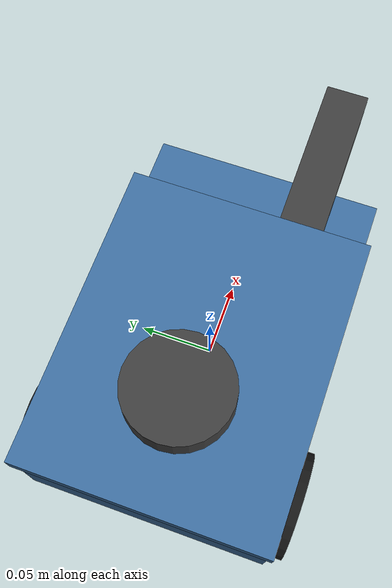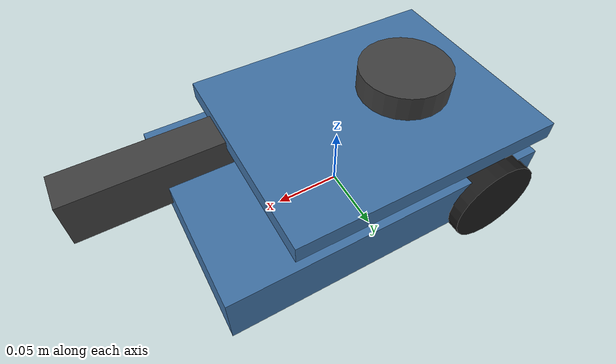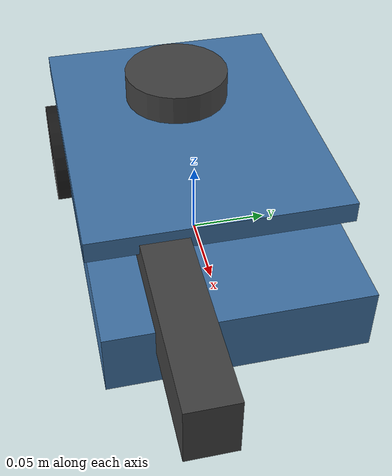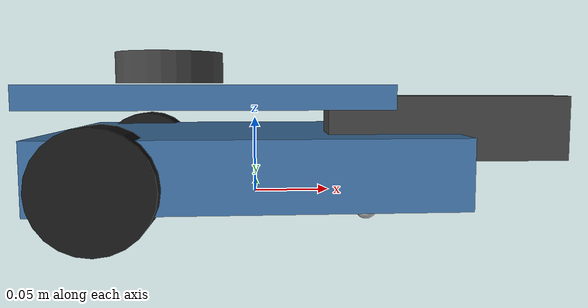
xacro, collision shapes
<?xml version="1.0"?>
<robot xmlns:xacro="http://www.ros.org/wiki/xacro" name="lidarino">

    <!-- ARGOMENTI E PROPRIETA' -->
    <xacro:property name="use_lidar_control" value="false" />
    <xacro:property name="mesh_url" value="package://lidarino_description/urdf/meshes/" />
    <xacro:arg name="use_sim" default="true" />
    <xacro:arg name="sim" default="isaac" />

    <!-- 1. COLORI E MATERIALI -->
    <xacro:include filename="materials.xacro" />

    <!-- 2. CORPO CENTRALE E RUOTE (Versione S2) -->
    <xacro:include filename="lidarino_core_s2.xacro" />

    <!-- 3. SENSORI (Manteniamo i link e i joint fisici) -->
    <xacro:include filename="rplidars2.xacro" />
    <xacro:include filename="astra_camera.xacro" />
    <xacro:include filename="imu.xacro" />

    <xacro:astra_camera parent="base_link" xyz="0.120 0.0 0.025" rpy="1.570796 -1.570796 0" />
    <xacro:rplidars2 parent="base_link" xyz="-0.056 0.0 0.053" rpy="0 0 0" />
    <xacro:imu_sensor parent="base_link" xyz="-0.092 0.0 0.02" rpy="0 0 0" />

</robot>

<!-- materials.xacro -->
<robot xmlns:xacro="http://www.ros.org/wiki/xacro">

    <material name="black">
        <color rgba="0.1 0.1 0.1 1.0"/>
    </material>

    <material name="dark_grey">
        <color rgba="0.25 0.25 0.25 1.0"/>
    </material>

    <material name="matte_orange">
        <color rgba="0.85 0.45 0.15 1.0"/>
    </material>

    <material name="muted_red">
        <color rgba="0.75 0.22 0.17 1.0"/>
    </material>

    <material name="steel_blue">
        <color rgba="0.25 0.45 0.65 1.0"/>
    </material>

    <material name="silver">
        <color rgba="0.75 0.75 0.75 1.0"/>
    </material>

</robot>

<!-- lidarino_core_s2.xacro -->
<robot xmlns:xacro="http://www.ros.org/wiki/xacro" name="Lidarino">

    <link name="base_link">
        <inertial>
            <origin xyz="-0.0062724127968771535 1.3799035175597654e-08 0.013070827636125267" rpy="0.0 0.0 0.0" />
            <mass value="0.4239314641509377" />
            <inertia ixx="0.0010482842137546186" iyy="0.0024338106744802982" izz="0.003184067568059869" ixy="-9.417101996162051e-05" iyz="-2.234993490616969e-06" ixz="0.0001129151524043299" />
        </inertial>
        <visual name="base_link_visual">
            <origin xyz="0.0 0.0 0.0" rpy="0.0 0.0 0.0" />
            <geometry>
                <mesh filename="${mesh_url}base_link_s2.stl" scale="0.001 0.001 0.001" />
            </geometry>
            <material name="steel_blue" />
        </visual>
        <collision name="base_link_collision">
            <origin xyz="0.0 0.0 0.021" rpy="0.0 0.0 0.0" />
            <geometry>
                <box size="0.25 0.16 0.042" />
            </geometry>
        </collision>
    </link>

    <link name="body_lid">
        <inertial>
            <origin xyz="-0.012951394456098867 -3.147938388524642e-07 0.06881041966340294" rpy="0.0 0.0 0.0" />
            <mass value="0.05261379951215123" />
            <inertia ixx="0.0001489352862801382" iyy="0.000229958819591738" izz="0.00037746798651689653" ixy="3.80132469862603e-10" iyz="3.2124298873716476e-11" ixz="-6.825968075725163e-07" />
        </inertial>
        <visual name="body_lid_visual">
            <origin xyz="0.0 0.0 -0.07" rpy="0.0 0.0 0.0" />
            <geometry>
                <mesh filename="${mesh_url}bodyLid.stl" scale="0.001 0.001 0.001" />
            </geometry>
            <material name="steel_blue" />
        </visual>
        <collision name="body_lid_collision">
            <origin xyz="-0.024 0.0 -0.005" rpy="0.0 0.0 0.0" />
            <geometry>
                <box size="0.206 0.164 0.014" />
            </geometry>
        </collision>
    </link>

    <link name="caster">
        <inertial>
            <origin xyz="0.0 0.0 0.0" rpy="0.0 0.0 0.0" />
            <mass value="0.01" />
            <inertia ixx="1e-4" iyy="1e-4" izz="1e-4" ixy="0" iyz="0" ixz="0" />
        </inertial>
        <visual name="caster_visual">
            <origin xyz="0.0 0.0 0.0" rpy="0.0 0.0 0.0" />
            <geometry>
                <sphere radius="0.008" />
            </geometry>
            <material name="silver" />
        </visual>
        <collision name="caster_collision">
            <origin xyz="0.0 0.0 0.0" rpy="0.0 0.0 0.0" />
            <geometry>
                <sphere radius="0.008" />
            </geometry>
        </collision>
    </link>

    <link name="wheel_R">
        <inertial>
            <origin xyz="3.8589283501977436e-08 3.3503422258718277e-13 -0.017044397508191807" rpy="0.0 -0.0 0.0" />
            <mass value="0.0493089812577897" />
            <inertia ixx="2.1725366580018456e-05" iyy="2.172573834724608e-05" izz="3.791921679166611e-05" ixy="5.925842498991085e-17" iyz="1.1233689759665433e-16" ixz="1.2860682814920879e-11" />
        </inertial>
        <visual name="wheel_R_visual">
            <origin xyz="1.1368683772161603e-15 1.3322676295501878e-17 0.0" rpy="-4.72621546065603e-16 -1.1102230246251568e-16 -2.7755575615628926e-17" />
            <geometry>
                <mesh filename="${mesh_url}wheel_R.stl" scale="0.001 0.001 0.001" />
            </geometry>
            <material name="black" />
        </visual>
        <collision name="wheel_R_collision">
            <origin xyz="0 0 -0.017" rpy="0 0 0" />
            <geometry>
                <cylinder radius="0.035" length="0.025" />
            </geometry>
        </collision>
    </link>

    <link name="wheel_L">
        <inertial>
            <origin xyz="3.8589283501977436e-08 3.3503422258718277e-13 -0.017044397508191828" rpy="0.0 -0.0 0.0" />
            <mass value="0.0493089812577897" />
            <inertia ixx="2.17253665800184e-05" iyy="2.1725738347246244e-05" izz="3.7919216791666135e-05" ixy="5.927197751706692e-17" iyz="1.1234367386023236e-16" ixz="1.2860682842025933e-11" />
        </inertial>
        <visual name="wheel_L_visual">
            <origin xyz="1.1368683772161603e-15 1.1102230246251566e-17 0.0" rpy="-1.4649353258190343e-16 -1.2470396389907355e-32 -5.551115123125783e-17" />
            <geometry>
                <mesh filename="${mesh_url}wheel_L.stl" scale="0.001 0.001 0.001" />
            </geometry>
            <material name="black" />
        </visual>
        <collision name="wheel_L_collision">
            <origin xyz="0 0 -0.017" rpy="0 0 0" />
            <geometry>
                <cylinder radius="0.035" length="0.025" />
            </geometry>
        </collision>
    </link>

    <joint name="L_wheel_Revolute" type="continuous">
        <origin xyz="-0.085 0.06 0.015" rpy="1.5707963267948966 -0.0 0.0" />
        <parent link="base_link" />
        <child link="wheel_L" />
        <axis xyz="0.0 0.0 -1.0" />
        <limit effort="1000.0" velocity="200.0" />
        <dynamics damping="10000000.0" friction="0.1" />
    </joint>

    <joint name="R_wheel_Revolute" type="continuous">
        <origin xyz="-0.085 -0.06 0.015" rpy="-1.5707963267948966 -0.0 0.0" />
        <parent link="base_link" />
        <child link="wheel_R" />
        <axis xyz="0.0 0.0 1.0" />
        <limit effort="1000.0" velocity="200.0" />
        <dynamics damping="10000000.0" friction="0.1" />
    </joint>

    <joint name="caster_fixed" type="fixed">
        <origin xyz="0.077 0.0 -0.013" rpy="0.0 0.0 0.0" />
        <parent link="base_link" />
        <child link="caster" />
    </joint>

    <joint name="body_lid_fixed" type="fixed">
        <origin xyz="0.0 0.0 0.07" rpy="0.0 0.0 0.0" />
        <parent link="base_link" />
        <child link="body_lid" />
    </joint>

</robot>

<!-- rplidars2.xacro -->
<robot xmlns:xacro="http://www.ros.org/wiki/xacro">

    <xacro:arg name="sim" default="gazebo" />
    <xacro:macro name="rplidars2" params="parent xyz rpy">

        <link name="rplidars2_link">
            <inertial>
                <origin xyz="-4.876953214253547e-05 6.129273590973731e-06 0.015121950727028356" rpy="0.0 0.0 0.0" />
                <mass value="0.2610121235316497" />
                <inertia ixx="0.00018781372994948866" iyy="0.0001855239755116742" izz="0.0002891065425456664" ixy="1.2883857858081062e-08" iyz="-2.488761129977374e-09" ixz="4.40529556879255e-07" />
            </inertial>
            <visual name="lidar_visual">
                <origin xyz="0.0 0.0 0.0" rpy="0.0 0.0 0.0" />
                <geometry>
                    <mesh filename="${mesh_url}RPLIDARS2.stl" scale="0.001 0.001 0.001" />
                </geometry>
                <material name="dark_grey" />
            </visual>
            <collision name="lidar_collision">
                <origin xyz="0.0 0.0 0.03" rpy="0.0 0.0 0.0" />
                <geometry>
                    <cylinder radius="0.035" length="0.02" />
                </geometry>
            </collision>
        </link>

        <joint name="rplidars2_joint" type="fixed">
            <parent link="${parent}" />
            <child link="rplidars2_link" />
            <origin xyz="${xyz}" rpy="${rpy}" />
        </joint>

        <link name="rplidars2_laser_link" />
        <joint name="rplidars2_laser_joint" type="fixed">
            <parent link="rplidars2_link" />
            <child link="rplidars2_laser_link" />
            <origin xyz="0.0 0.0 0.03" rpy="0.0 0.0 0.0" />
        </joint>

        <xacro:if value="${'$(arg sim)' == 'gazebo'}">
            <gazebo reference="rplidars2_laser_link">
                <sensor name="rplidar_s2" type="gpu_lidar">
                    <topic>/scan</topic>
                    <always_on>true</always_on>
                    <visualize>false</visualize> <update_rate>10.0</update_rate>
                    <gz_frame_id>rplidars2_laser_link</gz_frame_id>
                    <ray>
                        <scan>
                            <horizontal>
                                <samples>1000</samples>
                                <resolution>1.0</resolution>
                                <min_angle>-3.14159</min_angle>
                                <max_angle>3.14159</max_angle>
                            </horizontal>
                        </scan>
                        <range>
                            <min>0.08</min>
                            <max>30.0</max>
                            <resolution>0.013</resolution>
                        </range>
                        <noise>
                            <type>gaussian</type>
                            <mean>0.0</mean>
                            <stddev>0.01</stddev>
                        </noise>
                    </ray>
                </sensor>
            </gazebo>
        </xacro:if>
    </xacro:macro>
</robot>

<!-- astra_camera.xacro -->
<robot xmlns:xacro="http://www.ros.org/wiki/xacro">

    <xacro:arg name="sim" default="gazebo" />
    <xacro:macro name="astra_camera" params="parent xyz rpy">

        <link name="astra_link">
            <inertial>
                <origin xyz="0.021745856967737336 3.8230579211581216e-05 0.029303333814809707" rpy="0.0 0.0 0.0" />
                <mass value="0.23334756462839484" />
                <inertia ixx="0.00045538823905664865" iyy="7.785663760045297e-05" izz="0.00045460807011731756" ixy="1.841447020567419e-07" iyz="-4.2054876695014596e-08" ixz="9.205395041665818e-06" />
            </inertial>
            <visual name="astracamera_visual">
                <origin xyz="0.0 0.0 0.0" rpy="0.0 0.0 0.0" />
                <geometry>
                    <mesh filename="${mesh_url}astracamera.stl" scale="0.001 0.001 0.001" />
                </geometry>
                <material name="dark_grey" />
            </visual>
            <collision name="astracamera_collision">
                <origin xyz="0.02 0.0 0.035" rpy="0.0 0.0 0.0" />
                <geometry>
                    <box size="0.04 0.15 0.03" />
                </geometry>
            </collision>
        </link>

        <joint name="astra_joint" type="fixed">
            <parent link="${parent}" />
            <child link="astra_link" />
            <origin xyz="${xyz}" rpy="${rpy}" />
        </joint>

        <link name="astra_optical_frame" />
        <joint name="astra_optical_joint" type="fixed">
            <parent link="astra_link" />
            <child link="astra_optical_frame" />
            <origin xyz="0 0 0.032" rpy="${rpy}" />
        </joint>

        <xacro:if value="${'$(arg sim)' == 'gazebo'}">
            <gazebo reference="astra_optical_frame">
                <sensor type="rgbd_camera" name="astra_pro">
                    <topic>/astra/camera</topic>
                    <always_on>true</always_on>
                    <update_rate>5.0</update_rate>
                    <camera>
                        <horizontal_fov>1.047</horizontal_fov>
                        <image>
                            <width>640</width>
                            <height>480</height>
                            <format>R8G8B8</format>
                        </image>
                        <clip>
                            <near>0.1</near>
                            <far>8.0</far>
                        </clip>
                    </camera>
                    <gz_frame_id>astra_optical_frame</gz_frame_id>
                </sensor>
            </gazebo>
        </xacro:if>
    </xacro:macro>
</robot>

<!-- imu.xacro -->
<robot xmlns:xacro="http://www.ros.org/wiki/xacro">

    <!--
        IMU per sensor fusion (es. robot_localization ekf_node).
        Topic pubblicato: /imu (sensor_msgs/msg/Imu)
        Frame: imu_link (X=avanti, Y=sinistra, Z=su)
    -->
    <xacro:arg name="sim" default="gazebo" />
    <xacro:macro name="imu_sensor" params="parent xyz rpy">

        <link name="imu_link">
            <inertial>
                <!-- IMU reale tipica: pochi grammi, trascurabile dal punto di vista
                     inerziale ma serve comunque un inertial valido per KDL/ros2_control -->
                <origin xyz="0 0 0" rpy="0 0 0" />
                <mass value="0.01" />
                <inertia ixx="1e-4" iyy="1e-4" izz="1e-4" ixy="0.0" iyz="0.0" ixz="0.0" />
            </inertial>
            <visual name="imu_visual">
                <origin xyz="0 0 0" rpy="0 0 0" />
                <geometry>
                    <box size="0.005 0.005 0.005" />
                </geometry>
                <material name="dark_grey" />
            </visual>
            <collision name="imu_collision">
                <origin xyz="0 0 0" rpy="0 0 0" />
                <geometry>
                    <box size="0.005 0.005 0.005" />
                </geometry>
            </collision>
        </link>

        <joint name="imu_joint" type="fixed">
            <parent link="${parent}" />
            <child link="imu_link" />
            <origin xyz="${xyz}" rpy="${rpy}" />
        </joint>

        <xacro:if value="${'$(arg sim)' == 'gazebo'}">
            <gazebo reference="imu_link">
                <sensor type="imu" name="imu_sensor">
                    <topic>/imu</topic>
                    <always_on>true</always_on>
                    <update_rate>100.0</update_rate>
                    <gz_frame_id>imu_link</gz_frame_id>
                    <imu>
                        <angular_velocity>
                            <x>
                                <noise type="gaussian">
                                    <mean>0.0</mean>
                                    <stddev>0.0003</stddev>
                                    <bias_mean>0.0000075</bias_mean>
                                    <bias_stddev>0.0000008</bias_stddev>
                                </noise>
                            </x>
                            <y>
                                <noise type="gaussian">
                                    <mean>0.0</mean>
                                    <stddev>0.0003</stddev>
                                    <bias_mean>0.0000075</bias_mean>
                                    <bias_stddev>0.0000008</bias_stddev>
                                </noise>
                            </y>
                            <z>
                                <noise type="gaussian">
                                    <mean>0.0</mean>
                                    <stddev>0.0003</stddev>
                                    <bias_mean>0.0000075</bias_mean>
                                    <bias_stddev>0.0000008</bias_stddev>
                                </noise>
                            </z>
                        </angular_velocity>
                        <linear_acceleration>
                            <x>
                                <noise type="gaussian">
                                    <mean>0.0</mean>
                                    <stddev>0.017</stddev>
                                    <bias_mean>0.1</bias_mean>
                                    <bias_stddev>0.001</bias_stddev>
                                </noise>
                            </x>
                            <y>
                                <noise type="gaussian">
                                    <mean>0.0</mean>
                                    <stddev>0.017</stddev>
                                    <bias_mean>0.1</bias_mean>
                                    <bias_stddev>0.001</bias_stddev>
                                </noise>
                            </y>
                            <z>
                                <noise type="gaussian">
                                    <mean>0.0</mean>
                                    <stddev>0.017</stddev>
                                    <bias_mean>0.1</bias_mean>
                                    <bias_stddev>0.001</bias_stddev>
                                </noise>
                            </z>
                        </linear_acceleration>
                    </imu>
                </sensor>
            </gazebo>
        </xacro:if>
    </xacro:macro>
</robot>
